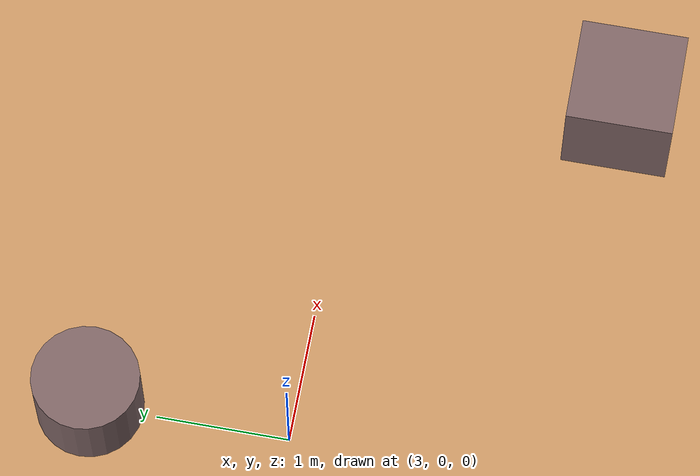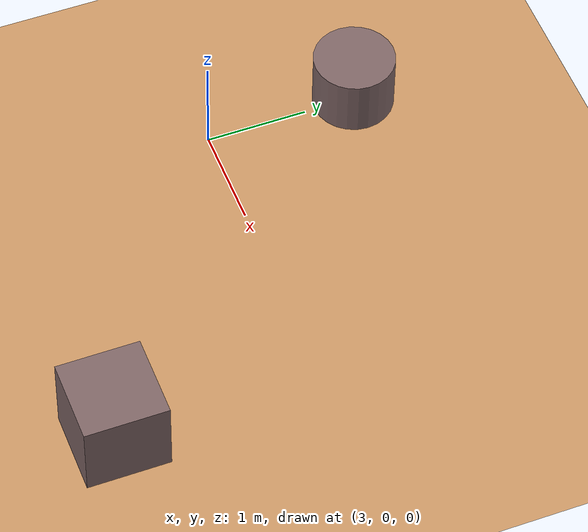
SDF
<?xml version="1.0" ?>
    <sdf version="1.8">
      <world name="erc_world">
        <!-- Physics engine settings -->
        <physics name="1ms" type="ignored">
          <max_step_size>0.002</max_step_size>
          <real_time_factor>1.0</real_time_factor>
        </physics>

        <!-- Essential Gazebo Plugins for Sensors and Physics -->
        <plugin filename="gz-sim-physics-system" name="gz::sim::systems::Physics" />
        <plugin filename="gz-sim-user-commands-system" name="gz::sim::systems::UserCommands" />
        <plugin filename="gz-sim-scene-broadcaster-system" name="gz::sim::systems::SceneBroadcaster" />
        <plugin filename="gz-sim-sensors-system" name="gz::sim::systems::Sensors">
          <render_engine>ogre2</render_engine>
        </plugin>
        <plugin filename="gz-sim-imu-system" name="gz::sim::systems::Imu" />
        <plugin filename="gz-sim-navsat-system" name="gz::sim::systems::NavSat" />

        <!-- Outdoor Lighting -->
        <light type="directional" name="sun">
          <cast_shadows>true</cast_shadows>
          <pose>0 0 20 0 0 0</pose>
          <diffuse>0.9 0.9 0.85 1</diffuse>
          <specular>0.2 0.2 0.2 1</specular>
          <direction>-0.5 0.1 -0.9</direction>
        </light>

        <!-- Ground Plane (Terrain) -->
        <model name="ground_plane">
          <static>true</static>
          <link name="link">
            <collision name="collision">
              <geometry><plane><normal>0 0 1</normal><size>100 100</size></plane></geometry>
              <surface>
                <friction>
                  <ode><mu>1.0</mu><mu2>1.0</mu2></ode>
                </friction>
              </surface>
            </collision>
            <visual name="visual">
              <geometry><plane><normal>0 0 1</normal><size>100 100</size></plane></geometry>
              <material>
                <ambient>0.8 0.6 0.4 1</ambient>
                <diffuse>0.8 0.6 0.4 1</diffuse>
              </material>
            </visual>
          </link>
        </model>

        <!-- Reference GPS Origin (ERC Competition Site in Poland) -->
        <spherical_coordinates>
          <surface_model>EARTH_WGS84</surface_model>
          <latitude_deg>50.0614</latitude_deg>
          <longitude_deg>19.9365</longitude_deg>
          <elevation>220.0</elevation>
          <heading_deg>0.0</heading_deg>
        </spherical_coordinates>

        <!-- Some ERC Obstacles / Boulders -->
        <model name="rock_1">
          <static>true</static>
          <pose>3.0 1.5 0.3 0 0 0</pose>
          <link name="link">
            <collision name="col"><geometry><cylinder><radius>0.4</radius><length>0.6</length></cylinder></geometry></collision>
            <visual name="vis"><geometry><cylinder><radius>0.4</radius><length>0.6</length></cylinder></geometry>
              <material><ambient>0.4 0.3 0.3 1</ambient><diffuse>0.5 0.4 0.4 1</diffuse></material>
            </visual>
          </link>
        </model>

        <model name="rock_2">
          <static>true</static>
          <pose>6.0 -2.0 0.4 0 0 0</pose>
          <link name="link">
            <collision name="col"><geometry><box><size>0.8 0.8 0.8</size></box></geometry></collision>
            <visual name="vis"><geometry><box><size>0.8 0.8 0.8</size></box></geometry>
              <material><ambient>0.4 0.3 0.3 1</ambient><diffuse>0.5 0.4 0.4 1</diffuse></material>
            </visual>
          </link>
        </model>
      </world>
    </sdf>
